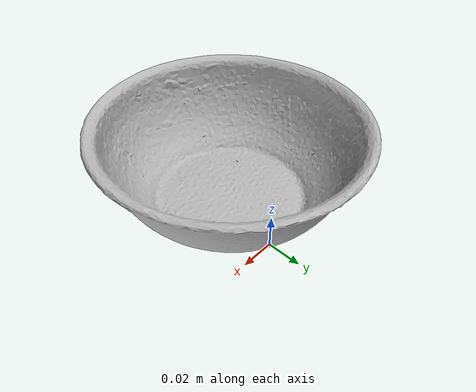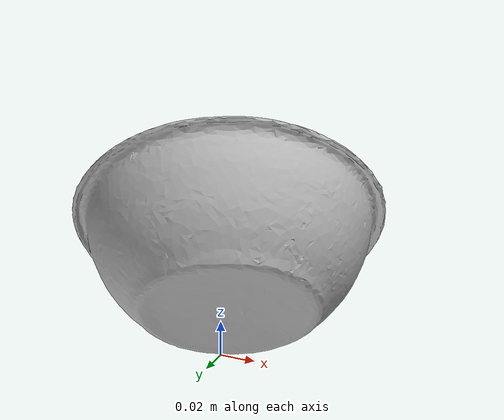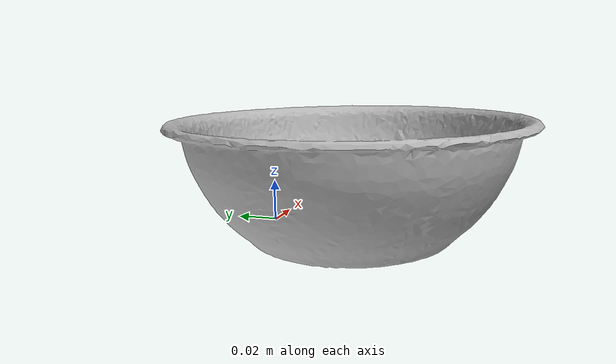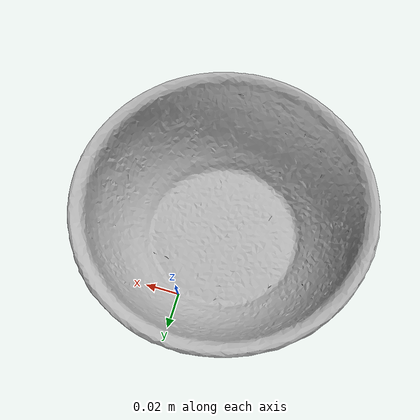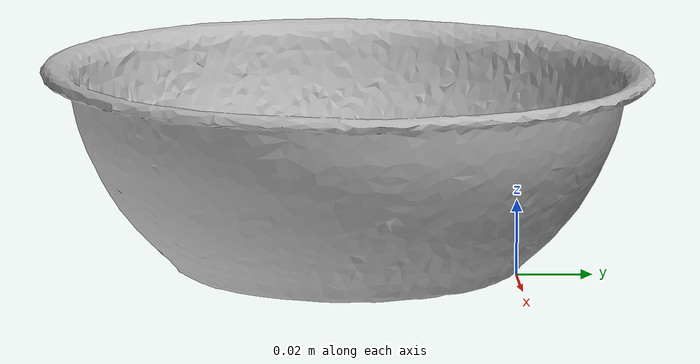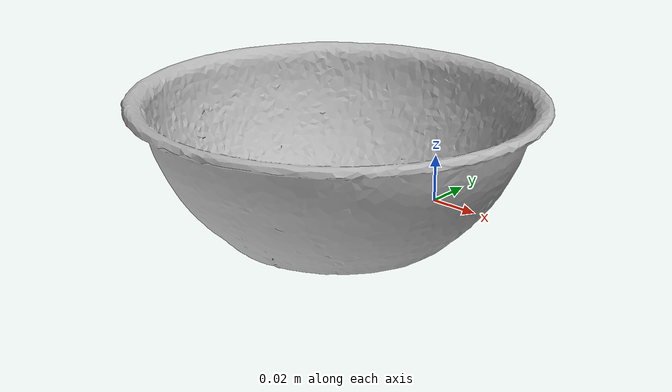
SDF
<?xml version='1.0'?>
<sdf version="1.4">
  <model name="bowl">
    <static>false</static>
    <link name="link">
      <inertial>
        <pose>-0.01427248568330144 -0.045728422080814235 0.026772347862895073 -2.6267378901298777 -1.5492925649828464 1.5480864653340545</pose>
        <mass>3.335824015809766e-05</mass>
        <inertia>
          <ixx>1.3112180307477242e-07</ixx>
          <ixy>2.808374241281196e-25</ixy>
          <ixz>-4.9217865822215285e-26</ixz>
          <iyy>7.919484753160423e-08</iyy>
          <iyz>2.04204150098207e-23</iyz>
          <izz>7.620043698791454e-08</izz>
        </inertia>
      </inertial>
      <collision name="collision">
        <geometry>
          <mesh>
            <!-- Use a downsampled mesh for collisions -->
            <uri>model://024_bowl/google_16k/024_bowl.obj</uri>
            </mesh>
        </geometry>
        <surface>
          <friction>
            <ode>
              <mu>0.9</mu>
              <mu2>0.9</mu2>
            </ode>
          </friction>
          <contact>
            <ode>
              <kp>1000000000000.0</kp>
              <kd>1</kd>
              <min_depth>0.0001</min_depth>
              <max_vel>0.01</max_vel>
            </ode>
          </contact>
          <bounce>
            <restitution_coefficient>0.1</restitution_coefficient>
            <threshold>1000.0</threshold>
          </bounce>
        </surface>
      </collision>
      <visual name="visual">
        <geometry>
          <mesh>
            <uri>model://024_bowl/google_16k/024_bowl.dae</uri>
            </mesh>
        </geometry>
      </visual>
    </link>
  </model>
</sdf>
